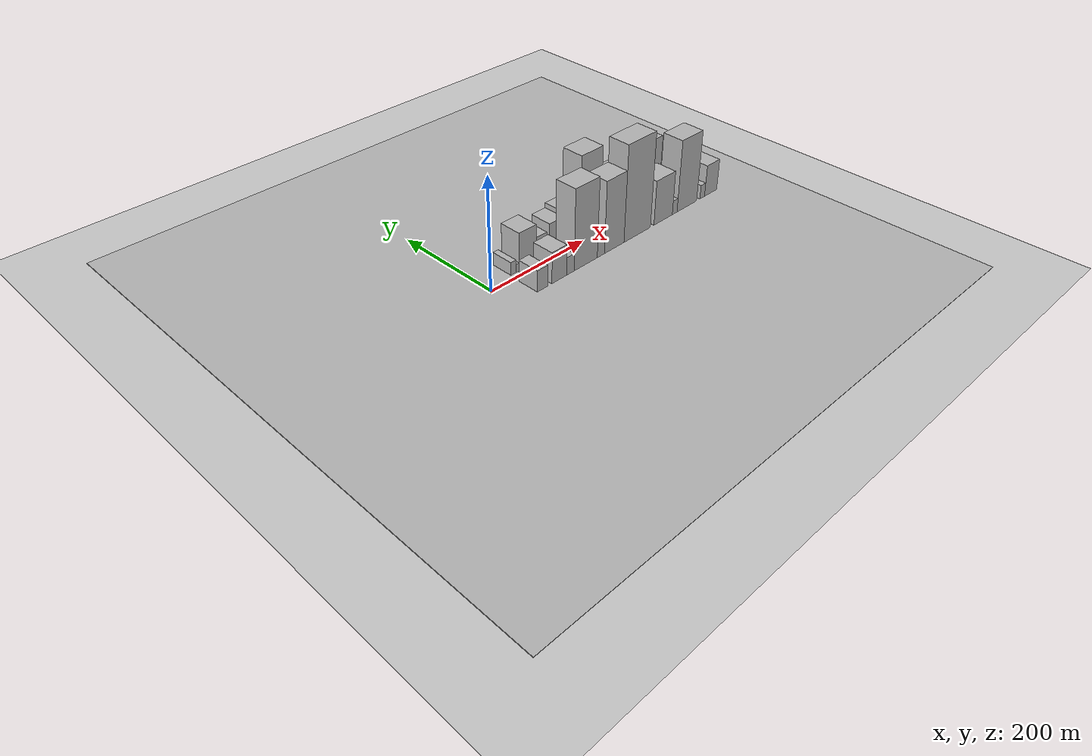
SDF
<?xml version="1.0" encoding="utf-8"?>

<sdf version="1.6">

   <world name="default">

      <gui fullscreen="0">

         <camera name="user_camera">

            <pose>-15 0 4.57585 0 0 0</pose>

            <view_controller>orbit</view_controller>

         </camera>

      </gui>

      <scene>

         <sky>

           <clouds>

             <speed>12</speed>

           </clouds>

         </sky>

         <ambient>0.4 0.4 0.4 1</ambient>

         <background>0.7 0.7 0.7 1</background>

         <shadows>1</shadows>

      </scene>

      <gravity>0 0 -9.8066</gravity>

      <magnetic_field>6e-06 2.3e-05 -4.2e-05</magnetic_field>

      <physics default="0" name="default_physics" type="ode">

         <ode>

            <solver>

               <type>quick</type>

               <iters>10</iters>

               <sor>1.0</sor>

               <use_dynamic_moi_rescaling>0</use_dynamic_moi_rescaling>

            </solver>

            <constraints>

               <cfm>0</cfm>

               <erp>0.2</erp>

               <contact_max_correcting_vel>100</contact_max_correcting_vel>

               <contact_surface_layer>0.001</contact_surface_layer>

            </constraints>

         </ode>

         <max_step_size>0.004</max_step_size>

         <real_time_factor>1</real_time_factor>

         <real_time_update_rate>250</real_time_update_rate>

      </physics>

      <light name="sun" type="directional">

         <cast_shadows>1</cast_shadows>

         <pose>0 0 10 0 0 0</pose>

         <diffuse>0.8 0.8 0.8 1</diffuse>

         <specular>0.2 0.2 0.2 1</specular>

         <attenuation>

            <range>1000</range>

            <constant>0.9</constant>

            <linear>0.01</linear>

            <quadratic>0.001</quadratic>

         </attenuation>

         <direction>-0.5 0.1 -0.9</direction>

      </light>

      <include>

         <name>ground_plane_1</name>

         <uri>model://HANNAS_ground_plane</uri>

         <pose>0 0 0  0 0 0</pose>

      </include>

      <include>

         <name>ground_plane_2</name>

         <uri>model://HANNAS_ground_plane</uri>

         <pose>100 0 0  0 0 0</pose>

      </include>

      <model name="building_1">

         <static>1</static>

         <pose frame="">55.4585 30.0000 0 0.000000 0.000000 1.570796</pose>

         <link name="link">

            <pose frame="">0 0 12.00 0 0 0</pose>

            <collision name="collision">

               <geometry>

                  <box>

                     <size>40.0000 10.9169 24.0000</size>

                  </box>

               </geometry>

               <max_contacts>10</max_contacts>

               <surface>

                  <contact>

                     <ode/>

                  </contact>

                  <bounce/>

                  <friction>

                     <torsional>

                        <ode/>

                     </torsional>

                     <ode/>

                  </friction>

               </surface>

            </collision>

            <visual name="visual">

               <cast_shadows>0</cast_shadows>

               <geometry>

                  <box>

                     <size>40.0000 10.9169 24.0000</size>

                  </box>

               </geometry>

               <material>

                  <script>

                     <uri>model://HANNAS_wall/materials/scripts</uri>

                     <uri>model://HANNAS_wall/materials/textures</uri>

                     <name>vrc/HANNAS_wall</name>

                  </script>

               </material>

            </visual>

            <self_collide>0</self_collide>

            <enable_wind>0</enable_wind>

            <kinematic>0</kinematic>

         </link>

      </model>

      <model name="building_2">

         <static>1</static>

         <pose frame="">64.4685 30.0000 0 0.000000 0.000000 1.570796</pose>

         <link name="link">

            <pose frame="">0 0 7.50 0 0 0</pose>

            <collision name="collision">

               <geometry>

                  <box>

                     <size>40.0000 7.1032 15.0000</size>

                  </box>

               </geometry>

               <max_contacts>10</max_contacts>

               <surface>

                  <contact>

                     <ode/>

                  </contact>

                  <bounce/>

                  <friction>

                     <torsional>

                        <ode/>

                     </torsional>

                     <ode/>

                  </friction>

               </surface>

            </collision>

            <visual name="visual">

               <cast_shadows>0</cast_shadows>

               <geometry>

                  <box>

                     <size>40.0000 7.1032 15.0000</size>

                  </box>

               </geometry>

               <material>

                  <script>

                     <uri>model://HANNAS_wall/materials/scripts</uri>

                     <uri>model://HANNAS_wall/materials/textures</uri>

                     <name>vrc/HANNAS_wall</name>

                  </script>

               </material>

            </visual>

            <self_collide>0</self_collide>

            <enable_wind>0</enable_wind>

            <kinematic>0</kinematic>

         </link>

      </model>

      <model name="building_3">

         <static>1</static>

         <pose frame="">86.2862 30.0000 0 0.000000 0.000000 1.570796</pose>

         <link name="link">

            <pose frame="">0 0 34.50 0 0 0</pose>

            <collision name="collision">

               <geometry>

                  <box>

                     <size>40.0000 36.5322 69.0000</size>

                  </box>

               </geometry>

               <max_contacts>10</max_contacts>

               <surface>

                  <contact>

                     <ode/>

                  </contact>

                  <bounce/>

                  <friction>

                     <torsional>

                        <ode/>

                     </torsional>

                     <ode/>

                  </friction>

               </surface>

            </collision>

            <visual name="visual">

               <cast_shadows>0</cast_shadows>

               <geometry>

                  <box>

                     <size>40.0000 36.5322 69.0000</size>

                  </box>

               </geometry>

               <material>

                  <script>

                     <uri>model://HANNAS_wall/materials/scripts</uri>

                     <uri>model://HANNAS_wall/materials/textures</uri>

                     <name>vrc/HANNAS_wall</name>

                  </script>

               </material>

            </visual>

            <self_collide>0</self_collide>

            <enable_wind>0</enable_wind>

            <kinematic>0</kinematic>

         </link>

      </model>

      <model name="building_4">

         <static>1</static>

         <pose frame="">116.0360 30.0000 0 0.000000 0.000000 1.570796</pose>

         <link name="link">

            <pose frame="">0 0 22.50 0 0 0</pose>

            <collision name="collision">

               <geometry>

                  <box>

                     <size>40.0000 22.9672 45.0000</size>

                  </box>

               </geometry>

               <max_contacts>10</max_contacts>

               <surface>

                  <contact>

                     <ode/>

                  </contact>

                  <bounce/>

                  <friction>

                     <torsional>

                        <ode/>

                     </torsional>

                     <ode/>

                  </friction>

               </surface>

            </collision>

            <visual name="visual">

               <cast_shadows>0</cast_shadows>

               <geometry>

                  <box>

                     <size>40.0000 22.9672 45.0000</size>

                  </box>

               </geometry>

               <material>

                  <script>

                     <uri>model://HANNAS_wall/materials/scripts</uri>

                     <uri>model://HANNAS_wall/materials/textures</uri>

                     <name>vrc/HANNAS_wall</name>

                  </script>

               </material>

            </visual>

            <self_collide>0</self_collide>

            <enable_wind>0</enable_wind>

            <kinematic>0</kinematic>

         </link>

      </model>

      <model name="building_5">

         <static>1</static>

         <pose frame="">148.5240 30.0000 0 0.000000 0.000000 1.570796</pose>

         <link name="link">

            <pose frame="">0 0 28.50 0 0 0</pose>

            <collision name="collision">

               <geometry>

                  <box>

                     <size>40.0000 30.0089 57.0000</size>

                  </box>

               </geometry>

               <max_contacts>10</max_contacts>

               <surface>

                  <contact>

                     <ode/>

                  </contact>

                  <bounce/>

                  <friction>

                     <torsional>

                        <ode/>

                     </torsional>

                     <ode/>

                  </friction>

               </surface>

            </collision>

            <visual name="visual">

               <cast_shadows>0</cast_shadows>

               <geometry>

                  <box>

                     <size>40.0000 30.0089 57.0000</size>

                  </box>

               </geometry>

               <material>

                  <script>

                     <uri>model://HANNAS_wall/materials/scripts</uri>

                     <uri>model://HANNAS_wall/materials/textures</uri>

                     <name>vrc/HANNAS_wall</name>

                  </script>

               </material>

            </visual>

            <self_collide>0</self_collide>

            <enable_wind>0</enable_wind>

            <kinematic>0</kinematic>

         </link>

      </model>

      <model name="building_6">

         <static>1</static>

         <pose frame="">180.4652 30.0000 0 0.000000 0.000000 1.570796</pose>

         <link name="link">

            <pose frame="">0 0 33.00 0 0 0</pose>

            <collision name="collision">

               <geometry>

                  <box>

                     <size>40.0000 33.8734 66.0000</size>

                  </box>

               </geometry>

               <max_contacts>10</max_contacts>

               <surface>

                  <contact>

                     <ode/>

                  </contact>

                  <bounce/>

                  <friction>

                     <torsional>

                        <ode/>

                     </torsional>

                     <ode/>

                  </friction>

               </surface>

            </collision>

            <visual name="visual">

               <cast_shadows>0</cast_shadows>

               <geometry>

                  <box>

                     <size>40.0000 33.8734 66.0000</size>

                  </box>

               </geometry>

               <material>

                  <script>

                     <uri>model://HANNAS_wall/materials/scripts</uri>

                     <uri>model://HANNAS_wall/materials/textures</uri>

                     <name>vrc/HANNAS_wall</name>

                  </script>

               </material>

            </visual>

            <self_collide>0</self_collide>

            <enable_wind>0</enable_wind>

            <kinematic>0</kinematic>

         </link>

      </model>

      <model name="building_7">

         <static>1</static>

         <pose frame="">227.9092 30.0000 0 0.000000 0.000000 1.570796</pose>

         <link name="link">

            <pose frame="">0 0 75.00 0 0 0</pose>

            <collision name="collision">

               <geometry>

                  <box>

                     <size>40.0000 49.0146 150.0000</size>

                  </box>

               </geometry>

               <max_contacts>10</max_contacts>

               <surface>

                  <contact>

                     <ode/>

                  </contact>

                  <bounce/>

                  <friction>

                     <torsional>

                        <ode/>

                     </torsional>

                     <ode/>

                  </friction>

               </surface>

            </collision>

            <visual name="visual">

               <cast_shadows>0</cast_shadows>

               <geometry>

                  <box>

                     <size>40.0000 49.0146 150.0000</size>

                  </box>

               </geometry>

               <material>

                  <script>

                     <uri>model://HANNAS_wall/materials/scripts</uri>

                     <uri>model://HANNAS_wall/materials/textures</uri>

                     <name>vrc/HANNAS_wall</name>

                  </script>

               </material>

            </visual>

            <self_collide>0</self_collide>

            <enable_wind>0</enable_wind>

            <kinematic>0</kinematic>

         </link>

      </model>

      <model name="building_8">

         <static>1</static>

         <pose frame="">269.6716 30.0000 0 0.000000 0.000000 1.570796</pose>

         <link name="link">

            <pose frame="">0 0 34.50 0 0 0</pose>

            <collision name="collision">

               <geometry>

                  <box>

                     <size>40.0000 34.5102 69.0000</size>

                  </box>

               </geometry>

               <max_contacts>10</max_contacts>

               <surface>

                  <contact>

                     <ode/>

                  </contact>

                  <bounce/>

                  <friction>

                     <torsional>

                        <ode/>

                     </torsional>

                     <ode/>

                  </friction>

               </surface>

            </collision>

            <visual name="visual">

               <cast_shadows>0</cast_shadows>

               <geometry>

                  <box>

                     <size>40.0000 34.5102 69.0000</size>

                  </box>

               </geometry>

               <material>

                  <script>

                     <uri>model://HANNAS_wall/materials/scripts</uri>

                     <uri>model://HANNAS_wall/materials/textures</uri>

                     <name>vrc/HANNAS_wall</name>

                  </script>

               </material>

            </visual>

            <self_collide>0</self_collide>

            <enable_wind>0</enable_wind>

            <kinematic>0</kinematic>

         </link>

      </model>

      <model name="building_9">

         <static>1</static>

         <pose frame="">312.7541 30.0000 0 0.000000 0.000000 1.570796</pose>

         <link name="link">

            <pose frame="">0 0 43.50 0 0 0</pose>

            <collision name="collision">

               <geometry>

                  <box>

                     <size>40.0000 51.6549 87.0000</size>

                  </box>

               </geometry>

               <max_contacts>10</max_contacts>

               <surface>

                  <contact>

                     <ode/>

                  </contact>

                  <bounce/>

                  <friction>

                     <torsional>

                        <ode/>

                     </torsional>

                     <ode/>

                  </friction>

               </surface>

            </collision>

            <visual name="visual">

               <cast_shadows>0</cast_shadows>

               <geometry>

                  <box>

                     <size>40.0000 51.6549 87.0000</size>

                  </box>

               </geometry>

               <material>

                  <script>

                     <uri>model://HANNAS_wall/materials/scripts</uri>

                     <uri>model://HANNAS_wall/materials/textures</uri>

                     <name>vrc/HANNAS_wall</name>

                  </script>

               </material>

            </visual>

            <self_collide>0</self_collide>

            <enable_wind>0</enable_wind>

            <kinematic>0</kinematic>

         </link>

      </model>

      <model name="building_10">

         <static>1</static>

         <pose frame="">349.2886 30.0000 0 0.000000 0.000000 1.570796</pose>

         <link name="link">

            <pose frame="">0 0 18.00 0 0 0</pose>

            <collision name="collision">

               <geometry>

                  <box>

                     <size>40.0000 21.4142 36.0000</size>

                  </box>

               </geometry>

               <max_contacts>10</max_contacts>

               <surface>

                  <contact>

                     <ode/>

                  </contact>

                  <bounce/>

                  <friction>

                     <torsional>

                        <ode/>

                     </torsional>

                     <ode/>

                  </friction>

               </surface>

            </collision>

            <visual name="visual">

               <cast_shadows>0</cast_shadows>

               <geometry>

                  <box>

                     <size>40.0000 21.4142 36.0000</size>

                  </box>

               </geometry>

               <material>

                  <script>

                     <uri>model://HANNAS_wall/materials/scripts</uri>

                     <uri>model://HANNAS_wall/materials/textures</uri>

                     <name>vrc/HANNAS_wall</name>

                  </script>

               </material>

            </visual>

            <self_collide>0</self_collide>

            <enable_wind>0</enable_wind>

            <kinematic>0</kinematic>

         </link>

      </model>

      <model name="building_11">

         <static>1</static>

         <pose frame="">380.5333 30.0000 0 0.000000 0.000000 1.570796</pose>

         <link name="link">

            <pose frame="">0 0 57.00 0 0 0</pose>

            <collision name="collision">

               <geometry>

                  <box>

                     <size>40.0000 41.0752 114.0000</size>

                  </box>

               </geometry>

               <max_contacts>10</max_contacts>

               <surface>

                  <contact>

                     <ode/>

                  </contact>

                  <bounce/>

                  <friction>

                     <torsional>

                        <ode/>

                     </torsional>

                     <ode/>

                  </friction>

               </surface>

            </collision>

            <visual name="visual">

               <cast_shadows>0</cast_shadows>

               <geometry>

                  <box>

                     <size>40.0000 41.0752 114.0000</size>

                  </box>

               </geometry>

               <material>

                  <script>

                     <uri>model://HANNAS_wall/materials/scripts</uri>

                     <uri>model://HANNAS_wall/materials/textures</uri>

                     <name>vrc/HANNAS_wall</name>

                  </script>

               </material>

            </visual>

            <self_collide>0</self_collide>

            <enable_wind>0</enable_wind>

            <kinematic>0</kinematic>

         </link>

      </model>

      <model name="building_12">

         <static>1</static>

         <pose frame="">411.2845 30.0000 0 0.000000 0.000000 1.570796</pose>

         <link name="link">

            <pose frame="">0 0 18.00 0 0 0</pose>

            <collision name="collision">

               <geometry>

                  <box>

                     <size>40.0000 20.4271 36.0000</size>

                  </box>

               </geometry>

               <max_contacts>10</max_contacts>

               <surface>

                  <contact>

                     <ode/>

                  </contact>

                  <bounce/>

                  <friction>

                     <torsional>

                        <ode/>

                     </torsional>

                     <ode/>

                  </friction>

               </surface>

            </collision>

            <visual name="visual">

               <cast_shadows>0</cast_shadows>

               <geometry>

                  <box>

                     <size>40.0000 20.4271 36.0000</size>

                  </box>

               </geometry>

               <material>

                  <script>

                     <uri>model://HANNAS_wall/materials/scripts</uri>

                     <uri>model://HANNAS_wall/materials/textures</uri>

                     <name>vrc/HANNAS_wall</name>

                  </script>

               </material>

            </visual>

            <self_collide>0</self_collide>

            <enable_wind>0</enable_wind>

            <kinematic>0</kinematic>

         </link>

      </model>

      <model name="building_13">

         <static>1</static>

         <pose frame="">443.3908 30.0000 0 0.000000 0.000000 1.570796</pose>

         <link name="link">

            <pose frame="">0 0 25.50 0 0 0</pose>

            <collision name="collision">

               <geometry>

                  <box>

                     <size>40.0000 27.7856 51.0000</size>

                  </box>

               </geometry>

               <max_contacts>10</max_contacts>

               <surface>

                  <contact>

                     <ode/>

                  </contact>

                  <bounce/>

                  <friction>

                     <torsional>

                        <ode/>

                     </torsional>

                     <ode/>

                  </friction>

               </surface>

            </collision>

            <visual name="visual">

               <cast_shadows>0</cast_shadows>

               <geometry>

                  <box>

                     <size>40.0000 27.7856 51.0000</size>

                  </box>

               </geometry>

               <material>

                  <script>

                     <uri>model://HANNAS_wall/materials/scripts</uri>

                     <uri>model://HANNAS_wall/materials/textures</uri>

                     <name>vrc/HANNAS_wall</name>

                  </script>

               </material>

            </visual>

            <self_collide>0</self_collide>

            <enable_wind>0</enable_wind>

            <kinematic>0</kinematic>

         </link>

      </model>

      <model name="building_14">

         <static>1</static>

         <pose frame="">474.1393 30.0000 0 0.000000 0.000000 1.570796</pose>

         <link name="link">

            <pose frame="">0 0 31.50 0 0 0</pose>

            <collision name="collision">

               <geometry>

                  <box>

                     <size>40.0000 33.7114 63.0000</size>

                  </box>

               </geometry>

               <max_contacts>10</max_contacts>

               <surface>

                  <contact>

                     <ode/>

                  </contact>

                  <bounce/>

                  <friction>

                     <torsional>

                        <ode/>

                     </torsional>

                     <ode/>

                  </friction>

               </surface>

            </collision>

            <visual name="visual">

               <cast_shadows>0</cast_shadows>

               <geometry>

                  <box>

                     <size>40.0000 33.7114 63.0000</size>

                  </box>

               </geometry>

               <material>

                  <script>

                     <uri>model://HANNAS_wall/materials/scripts</uri>

                     <uri>model://HANNAS_wall/materials/textures</uri>

                     <name>vrc/HANNAS_wall</name>

                  </script>

               </material>

            </visual>

            <self_collide>0</self_collide>

            <enable_wind>0</enable_wind>

            <kinematic>0</kinematic>

         </link>

      </model>

      <model name="building_15">

         <static>1</static>

         <pose frame="">58.9016 -30.0000 0 0.000000 0.000000 1.570796</pose>

         <link name="link">

            <pose frame="">0 0 19.50 0 0 0</pose>

            <collision name="collision">

               <geometry>

                  <box>

                     <size>40.0000 21.8032 39.0000</size>

                  </box>

               </geometry>

               <max_contacts>10</max_contacts>

               <surface>

                  <contact>

                     <ode/>

                  </contact>

                  <bounce/>

                  <friction>

                     <torsional>

                        <ode/>

                     </torsional>

                     <ode/>

                  </friction>

               </surface>

            </collision>

            <visual name="visual">

               <cast_shadows>0</cast_shadows>

               <geometry>

                  <box>

                     <size>40.0000 21.8032 39.0000</size>

                  </box>

               </geometry>

               <material>

                  <script>

                     <uri>model://HANNAS_wall/materials/scripts</uri>

                     <uri>model://HANNAS_wall/materials/textures</uri>

                     <name>vrc/HANNAS_wall</name>

                  </script>

               </material>

            </visual>

            <self_collide>0</self_collide>

            <enable_wind>0</enable_wind>

            <kinematic>0</kinematic>

         </link>

      </model>

      <model name="building_16">

         <static>1</static>

         <pose frame="">94.7567 -30.0000 0 0.000000 0.000000 1.570796</pose>

         <link name="link">

            <pose frame="">0 0 28.50 0 0 0</pose>

            <collision name="collision">

               <geometry>

                  <box>

                     <size>40.0000 31.9071 57.0000</size>

                  </box>

               </geometry>

               <max_contacts>10</max_contacts>

               <surface>

                  <contact>

                     <ode/>

                  </contact>

                  <bounce/>

                  <friction>

                     <torsional>

                        <ode/>

                     </torsional>

                     <ode/>

                  </friction>

               </surface>

            </collision>

            <visual name="visual">

               <cast_shadows>0</cast_shadows>

               <geometry>

                  <box>

                     <size>40.0000 31.9071 57.0000</size>

                  </box>

               </geometry>

               <material>

                  <script>

                     <uri>model://HANNAS_wall/materials/scripts</uri>

                     <uri>model://HANNAS_wall/materials/textures</uri>

                     <name>vrc/HANNAS_wall</name>

                  </script>

               </material>

            </visual>

            <self_collide>0</self_collide>

            <enable_wind>0</enable_wind>

            <kinematic>0</kinematic>

         </link>

      </model>

      <model name="building_17">

         <static>1</static>

         <pose frame="">119.0610 -30.0000 0 0.000000 0.000000 1.570796</pose>

         <link name="link">

            <pose frame="">0 0 16.50 0 0 0</pose>

            <collision name="collision">

               <geometry>

                  <box>

                     <size>40.0000 16.7014 33.0000</size>

                  </box>

               </geometry>

               <max_contacts>10</max_contacts>

               <surface>

                  <contact>

                     <ode/>

                  </contact>

                  <bounce/>

                  <friction>

                     <torsional>

                        <ode/>

                     </torsional>

                     <ode/>

                  </friction>

               </surface>

            </collision>

            <visual name="visual">

               <cast_shadows>0</cast_shadows>

               <geometry>

                  <box>

                     <size>40.0000 16.7014 33.0000</size>

                  </box>

               </geometry>

               <material>

                  <script>

                     <uri>model://HANNAS_wall/materials/scripts</uri>

                     <uri>model://HANNAS_wall/materials/textures</uri>

                     <name>vrc/HANNAS_wall</name>

                  </script>

               </material>

            </visual>

            <self_collide>0</self_collide>

            <enable_wind>0</enable_wind>

            <kinematic>0</kinematic>

         </link>

      </model>

      <model name="building_18">

         <static>1</static>

         <pose frame="">153.7601 -30.0000 0 0.000000 0.000000 1.570796</pose>

         <link name="link">

            <pose frame="">0 0 73.50 0 0 0</pose>

            <collision name="collision">

               <geometry>

                  <box>

                     <size>40.0000 52.6967 147.0000</size>

                  </box>

               </geometry>

               <max_contacts>10</max_contacts>

               <surface>

                  <contact>

                     <ode/>

                  </contact>

                  <bounce/>

                  <friction>

                     <torsional>

                        <ode/>

                     </torsional>

                     <ode/>

                  </friction>

               </surface>

            </collision>

            <visual name="visual">

               <cast_shadows>0</cast_shadows>

               <geometry>

                  <box>

                     <size>40.0000 52.6967 147.0000</size>

                  </box>

               </geometry>

               <material>

                  <script>

                     <uri>model://HANNAS_wall/materials/scripts</uri>

                     <uri>model://HANNAS_wall/materials/textures</uri>

                     <name>vrc/HANNAS_wall</name>

                  </script>

               </material>

            </visual>

            <self_collide>0</self_collide>

            <enable_wind>0</enable_wind>

            <kinematic>0</kinematic>

         </link>

      </model>

      <model name="building_19">

         <static>1</static>

         <pose frame="">188.3631 -30.0000 0 0.000000 0.000000 1.570796</pose>

         <link name="link">

            <pose frame="">0 0 16.50 0 0 0</pose>

            <collision name="collision">

               <geometry>

                  <box>

                     <size>40.0000 16.5093 33.0000</size>

                  </box>

               </geometry>

               <max_contacts>10</max_contacts>

               <surface>

                  <contact>

                     <ode/>

                  </contact>

                  <bounce/>

                  <friction>

                     <torsional>

                        <ode/>

                     </torsional>

                     <ode/>

                  </friction>

               </surface>

            </collision>

            <visual name="visual">

               <cast_shadows>0</cast_shadows>

               <geometry>

                  <box>

                     <size>40.0000 16.5093 33.0000</size>

                  </box>

               </geometry>

               <material>

                  <script>

                     <uri>model://HANNAS_wall/materials/scripts</uri>

                     <uri>model://HANNAS_wall/materials/textures</uri>

                     <name>vrc/HANNAS_wall</name>

                  </script>

               </material>

            </visual>

            <self_collide>0</self_collide>

            <enable_wind>0</enable_wind>

            <kinematic>0</kinematic>

         </link>

      </model>

      <model name="building_20">

         <static>1</static>

         <pose frame="">219.9151 -30.0000 0 0.000000 0.000000 1.570796</pose>

         <link name="link">

            <pose frame="">0 0 66.00 0 0 0</pose>

            <collision name="collision">

               <geometry>

                  <box>

                     <size>40.0000 46.5947 132.0000</size>

                  </box>

               </geometry>

               <max_contacts>10</max_contacts>

               <surface>

                  <contact>

                     <ode/>

                  </contact>

                  <bounce/>

                  <friction>

                     <torsional>

                        <ode/>

                     </torsional>

                     <ode/>

                  </friction>

               </surface>

            </collision>

            <visual name="visual">

               <cast_shadows>0</cast_shadows>

               <geometry>

                  <box>

                     <size>40.0000 46.5947 132.0000</size>

                  </box>

               </geometry>

               <material>

                  <script>

                     <uri>model://HANNAS_wall/materials/scripts</uri>

                     <uri>model://HANNAS_wall/materials/textures</uri>

                     <name>vrc/HANNAS_wall</name>

                  </script>

               </material>

            </visual>

            <self_collide>0</self_collide>

            <enable_wind>0</enable_wind>

            <kinematic>0</kinematic>

         </link>

      </model>

      <model name="building_21">

         <static>1</static>

         <pose frame="">275.8373 -30.0000 0 0.000000 0.000000 1.570796</pose>

         <link name="link">

            <pose frame="">0 0 88.50 0 0 0</pose>

            <collision name="collision">

               <geometry>

                  <box>

                     <size>40.0000 65.2498 177.0000</size>

                  </box>

               </geometry>

               <max_contacts>10</max_contacts>

               <surface>

                  <contact>

                     <ode/>

                  </contact>

                  <bounce/>

                  <friction>

                     <torsional>

                        <ode/>

                     </torsional>

                     <ode/>

                  </friction>

               </surface>

            </collision>

            <visual name="visual">

               <cast_shadows>0</cast_shadows>

               <geometry>

                  <box>

                     <size>40.0000 65.2498 177.0000</size>

                  </box>

               </geometry>

               <material>

                  <script>

                     <uri>model://HANNAS_wall/materials/scripts</uri>

                     <uri>model://HANNAS_wall/materials/textures</uri>

                     <name>vrc/HANNAS_wall</name>

                  </script>

               </material>

            </visual>

            <self_collide>0</self_collide>

            <enable_wind>0</enable_wind>

            <kinematic>0</kinematic>

         </link>

      </model>

      <model name="building_22">

         <static>1</static>

         <pose frame="">341.1310 -30.0000 0 0.000000 0.000000 1.570796</pose>

         <link name="link">

            <pose frame="">0 0 42.00 0 0 0</pose>

            <collision name="collision">

               <geometry>

                  <box>

                     <size>40.0000 47.3375 84.0000</size>

                  </box>

               </geometry>

               <max_contacts>10</max_contacts>

               <surface>

                  <contact>

                     <ode/>

                  </contact>

                  <bounce/>

                  <friction>

                     <torsional>

                        <ode/>

                     </torsional>

                     <ode/>

                  </friction>

               </surface>

            </collision>

            <visual name="visual">

               <cast_shadows>0</cast_shadows>

               <geometry>

                  <box>

                     <size>40.0000 47.3375 84.0000</size>

                  </box>

               </geometry>

               <material>

                  <script>

                     <uri>model://HANNAS_wall/materials/scripts</uri>

                     <uri>model://HANNAS_wall/materials/textures</uri>

                     <name>vrc/HANNAS_wall</name>

                  </script>

               </material>

            </visual>

            <self_collide>0</self_collide>

            <enable_wind>0</enable_wind>

            <kinematic>0</kinematic>

         </link>

      </model>

      <model name="building_23">

         <static>1</static>

         <pose frame="">371.0348 -30.0000 0 0.000000 0.000000 1.570796</pose>

         <link name="link">

            <pose frame="">0 0 13.50 0 0 0</pose>

            <collision name="collision">

               <geometry>

                  <box>

                     <size>40.0000 12.4702 27.0000</size>

                  </box>

               </geometry>

               <max_contacts>10</max_contacts>

               <surface>

                  <contact>

                     <ode/>

                  </contact>

                  <bounce/>

                  <friction>

                     <torsional>

                        <ode/>

                     </torsional>

                     <ode/>

                  </friction>

               </surface>

            </collision>

            <visual name="visual">

               <cast_shadows>0</cast_shadows>

               <geometry>

                  <box>

                     <size>40.0000 12.4702 27.0000</size>

                  </box>

               </geometry>

               <material>

                  <script>

                     <uri>model://HANNAS_wall/materials/scripts</uri>

                     <uri>model://HANNAS_wall/materials/textures</uri>

                     <name>vrc/HANNAS_wall</name>

                  </script>

               </material>

            </visual>

            <self_collide>0</self_collide>

            <enable_wind>0</enable_wind>

            <kinematic>0</kinematic>

         </link>

      </model>

      <model name="building_24">

         <static>1</static>

         <pose frame="">403.5535 -30.0000 0 0.000000 0.000000 1.570796</pose>

         <link name="link">

            <pose frame="">0 0 67.50 0 0 0</pose>

            <collision name="collision">

               <geometry>

                  <box>

                     <size>40.0000 52.5672 135.0000</size>

                  </box>

               </geometry>

               <max_contacts>10</max_contacts>

               <surface>

                  <contact>

                     <ode/>

                  </contact>

                  <bounce/>

                  <friction>

                     <torsional>

                        <ode/>

                     </torsional>

                     <ode/>

                  </friction>

               </surface>

            </collision>

            <visual name="visual">

               <cast_shadows>0</cast_shadows>

               <geometry>

                  <box>

                     <size>40.0000 52.5672 135.0000</size>

                  </box>

               </geometry>

               <material>

                  <script>

                     <uri>model://HANNAS_wall/materials/scripts</uri>

                     <uri>model://HANNAS_wall/materials/textures</uri>

                     <name>vrc/HANNAS_wall</name>

                  </script>

               </material>

            </visual>

            <self_collide>0</self_collide>

            <enable_wind>0</enable_wind>

            <kinematic>0</kinematic>

         </link>

      </model>

      <model name="building_25">

         <static>1</static>

         <pose frame="">445.2921 -30.0000 0 0.000000 0.000000 1.570796</pose>

         <link name="link">

            <pose frame="">0 0 13.50 0 0 0</pose>

            <collision name="collision">

               <geometry>

                  <box>

                     <size>40.0000 12.9100 27.0000</size>

                  </box>

               </geometry>

               <max_contacts>10</max_contacts>

               <surface>

                  <contact>

                     <ode/>

                  </contact>

                  <bounce/>

                  <friction>

                     <torsional>

                        <ode/>

                     </torsional>

                     <ode/>

                  </friction>

               </surface>

            </collision>

            <visual name="visual">

               <cast_shadows>0</cast_shadows>

               <geometry>

                  <box>

                     <size>40.0000 12.9100 27.0000</size>

                  </box>

               </geometry>

               <material>

                  <script>

                     <uri>model://HANNAS_wall/materials/scripts</uri>

                     <uri>model://HANNAS_wall/materials/textures</uri>

                     <name>vrc/HANNAS_wall</name>

                  </script>

               </material>

            </visual>

            <self_collide>0</self_collide>

            <enable_wind>0</enable_wind>

            <kinematic>0</kinematic>

         </link>

      </model>

      <model name="building_26">

         <static>1</static>

         <pose frame="">468.6431 -30.0000 0 0.000000 0.000000 1.570796</pose>

         <link name="link">

            <pose frame="">0 0 30.00 0 0 0</pose>

            <collision name="collision">

               <geometry>

                  <box>

                     <size>40.0000 33.7920 60.0000</size>

                  </box>

               </geometry>

               <max_contacts>10</max_contacts>

               <surface>

                  <contact>

                     <ode/>

                  </contact>

                  <bounce/>

                  <friction>

                     <torsional>

                        <ode/>

                     </torsional>

                     <ode/>

                  </friction>

               </surface>

            </collision>

            <visual name="visual">

               <cast_shadows>0</cast_shadows>

               <geometry>

                  <box>

                     <size>40.0000 33.7920 60.0000</size>

                  </box>

               </geometry>

               <material>

                  <script>

                     <uri>model://HANNAS_wall/materials/scripts</uri>

                     <uri>model://HANNAS_wall/materials/textures</uri>

                     <name>vrc/HANNAS_wall</name>

                  </script>

               </material>

            </visual>

            <self_collide>0</self_collide>

            <enable_wind>0</enable_wind>

            <kinematic>0</kinematic>

         </link>

      </model>

   </world>

</sdf>

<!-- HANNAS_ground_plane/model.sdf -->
<sdf version="1.4">
<model name="HANNAS_ground_plane">
  <static>true</static>
    <link name="link">
      <collision name="collision">
        <geometry>
          <plane>
            <normal>0 0 1</normal>
            <size>1000 1000</size>
          </plane>
        </geometry>
        <surface>
          <friction>
            <ode>
              <mu>100</mu>
              <mu2>50</mu2>
            </ode>
          </friction>
        </surface>
      </collision>
      <visual name="visual">
        <cast_shadows>false</cast_shadows>
        <geometry>
          <plane>
            <normal>0 0 1</normal>
            <size>1000 1000</size>
          </plane>
        </geometry>
        <material>
          <script>
            <uri>model://HANNAS_ground_plane/materials/scripts/HANNAS_ground_plane.material</uri>
	    <uri>model://HANNAS_ground_plane/materials/textures</uri>
            <name>HANNASGroundPlane/Image</name>
          </script>
        </material>
      </visual>
    </link>
  </model>
</sdf>
